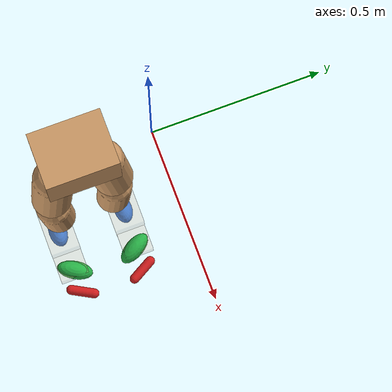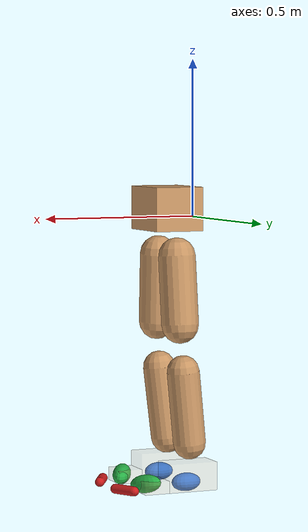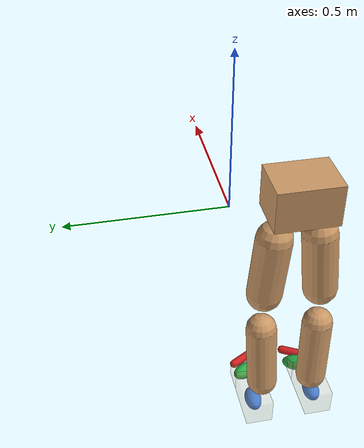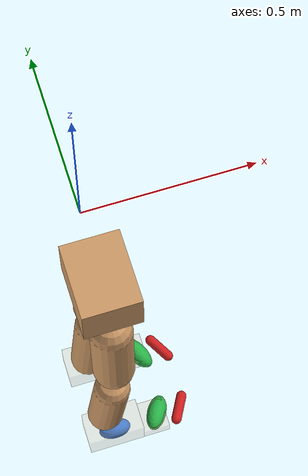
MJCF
<mujoco model="smpl_lower_humanoid_elipsoid_foot_contact">
  <compiler angle="radian" coordinate="local" />
  <option timestep="0.001" integrator="implicitfast" solver="Newton" cone="elliptic" impratio="10" iterations="80" tolerance="1e-10" noslip_iterations="2">
    <flag nativeccd="enable" multiccd="enable" />
  </option>
  <default>
    <joint damping="0.12" armature="0.0005" />
    <geom solref="0.012 1" solimp="0.90 0.98 0.0015 0.5 2" margin="0.0005" />
    <default class="elipsoid_foot_contact">
      <geom type="ellipsoid" density="0" condim="6" contype="1" conaffinity="2" friction="1.0 0.03 0.002" rgba="0.10 0.45 0.85 0.88" />
    </default>
    <default class="elipsoid_touch_site">
      <site type="box" group="3" rgba="0.9 0.2 0.1 0.18" />
    </default>
  </default>
  <asset>
    <texture type="skybox" builtin="gradient" rgb1=".4 .5 .6" rgb2="0 0 0" width="100" height="100" />
    <texture builtin="flat" height="1278" mark="cross" markrgb="1 1 1" name="texgeom" random="0.01" rgb1="0.8 0.6 0.4" rgb2="0.8 0.6 0.4" type="cube" width="127" />
    <texture builtin="checker" height="100" name="texplane" rgb1="0 0 0" rgb2="0.8 0.8 0.8" type="2d" width="100" />
    <material name="MatPlane" reflectance="0.5" shininess="1" specular="1" texrepeat="60 60" texture="texplane" />
    <material name="geom" texture="texgeom" texuniform="true" />
  </asset>
  <worldbody>
    <light cutoff="100" diffuse="1 1 1" dir="-0 0 -1.3" directional="true" exponent="1" pos="0 0 1.3" specular=".1 .1 .1" />
    <body name="Pelvis" pos="-0.0018 -0.2233 0.0282">
      <geom type="box" pos="-0.0055 -0.0000 -0.0121" size="0.083 0.1069 0.0722" quat="1.0000 0.0000 0.0000 0.0000" density="1000" conaffinity="1" condim="3" contype="7" margin="0.001" rgba="0.8 0.6 .4 1" />
      <body name="L_Hip" pos="-0.0068 0.0695 -0.0914">
        <joint name="L_Hip_x" type="hinge" pos="0 0 0" axis="1 0 0" stiffness="800" damping="80" armature="0.02" range="-180.0000 180.0000" limited="true" />
        <joint name="L_Hip_y" type="hinge" pos="0 0 0" axis="0 1 0" stiffness="800" damping="80" armature="0.02" range="-180.0000 180.0000" limited="true" />
        <joint name="L_Hip_z" type="hinge" pos="0 0 0" axis="0 0 1" stiffness="800" damping="80" armature="0.02" range="-180.0000 180.0000" limited="true" />
        <geom type="capsule" contype="1" conaffinity="1" density="2040.816327" fromto="-0.0009 0.0069 -0.0750 -0.0036 0.0274 -0.3002" size="0.0615" condim="3" margin="0.001" rgba="0.8 0.6 .4 1" />
        <body name="L_Knee" pos="-0.0045 0.0343 -0.3752">
          <joint name="L_Knee_x" type="hinge" pos="0 0 0" axis="1 0 0" stiffness="800" damping="80" armature="0.02" range="-180.0000 180.0000" limited="true" />
          <joint name="L_Knee_y" type="hinge" pos="0 0 0" axis="0 1 0" stiffness="800" damping="80" armature="0.02" range="-180.0000 180.0000" limited="true" />
          <joint name="L_Knee_z" type="hinge" pos="0 0 0" axis="0 0 1" stiffness="800" damping="80" armature="0.02" range="-180.0000 180.0000" limited="true" />
          <geom type="capsule" contype="1" conaffinity="1" density="1234.567901" fromto="-0.0087 -0.0027 -0.0796 -0.0350 -0.0109 -0.3184" size="0.0541" condim="3" margin="0.001" rgba="0.8 0.6 .4 1" />
          <body name="L_Ankle" pos="-0.0437 -0.0136 -0.398">
            <joint name="L_Ankle_x" type="hinge" pos="0 0 0" axis="1 0 0" stiffness="800" damping="80" armature="0.02" range="-180.0000 180.0000" limited="true" />
            <joint name="L_Ankle_y" type="hinge" pos="0 0 0" axis="0 1 0" stiffness="800" damping="80" armature="0.02" range="-180.0000 180.0000" limited="true" />
            <joint name="L_Ankle_z" type="hinge" pos="0 0 0" axis="0 0 1" stiffness="800" damping="80" armature="0.02" range="-180.0000 180.0000" limited="true" />
            <geom name="L_foot_inertial_visual" type="box" pos="0.0242 0.0233 -0.0239" size="0.085 0.0483 0.0464" quat="1.0000 0.0000 0.0000 0.0000" density="1000" conaffinity="0" condim="3" contype="0" margin="0.001" rgba="0.8 0.6 .4 0.18" />
            <body name="L_elipsoid_foot_segment" pos="0.00000 0.02400 -0.03000">
              <inertial pos="0.00000 -0.01000 0.02800" mass="0.55" diaginertia="0.0012 0.0026 0.0021" />
              <geom name="L_heel_ellipsoid" class="elipsoid_foot_contact" pos="0.03000 0.00000 -0.01500" quat="0.70512 0.05298 0.05298 -0.70512" size="0.030 0.050 0.030" rgba="0.18 0.48 0.90 0.90" />
              <geom name="L_ball_ellipsoid" class="elipsoid_foot_contact" pos="0.17000 -0.01000 -0.01366" quat="0.85577 0.08586 0.05093 -0.50763" size="0.060 0.030 0.030" rgba="0.16 0.70 0.28 0.90" />
              <site name="L_heel_touch" class="elipsoid_touch_site" pos="0.03000 0.00000 -0.03100" size="0.050 0.070 0.004" />
              <site name="L_ball_touch" class="elipsoid_touch_site" pos="0.17000 -0.01000 -0.03100" size="0.080 0.055 0.004" />
              <body name="L_elipsoid_toe_segment" pos="0.20000 0.00000 -0.01400">
                <joint name="L_toe_hinge" type="hinge" axis="0 -1 0" range="-0.8 0.7" limited="true" damping="0.18" armature="0.0004" />
                <inertial pos="0.05000 0.00000 0.00200" mass="0.12" diaginertia="0.00018 0.00045 0.00038" />
                <geom name="L_toe_capsule" class="elipsoid_foot_contact" type="capsule" fromto="0.02500 0.02400 -0.01500  0.06300 -0.04400 -0.01500" size="0.016" rgba="0.82 0.12 0.12 0.90" />
                <site name="L_toe_touch" class="elipsoid_touch_site" pos="0.04400 -0.01000 -0.03100" size="0.040 0.060 0.004" />
              </body>
            </body>
            <body name="L_Toe" pos="0.1193 0.0264 -0.0558">
              <joint name="L_Toe_x" type="hinge" pos="0 0 0" axis="1 0 0" stiffness="500" damping="50" armature="0.02" range="-180.0000 180.0000" limited="true" />
              <joint name="L_Toe_y" type="hinge" pos="0 0 0" axis="0 1 0" stiffness="500" damping="50" armature="0.02" range="-180.0000 180.0000" limited="true" />
              <joint name="L_Toe_z" type="hinge" pos="0 0 0" axis="0 0 1" stiffness="500" damping="50" armature="0.02" range="-180.0000 180.0000" limited="true" />
              <geom name="L_toe_inertial_visual" type="box" pos="0.0248 -0.0030 0.0055" size="0.0496 0.0478 0.02" quat="1.0000 0.0000 0.0000 0.0000" density="1000" conaffinity="0" condim="3" contype="0" margin="0.001" rgba="0.8 0.6 .4 0.12" />
            </body>
          </body>
        </body>
      </body>
      <body name="R_Hip" pos="-0.0043 -0.0677 -0.0905">
        <joint name="R_Hip_x" type="hinge" pos="0 0 0" axis="1 0 0" stiffness="800" damping="80" armature="0.02" range="-180.0000 180.0000" limited="true" />
        <joint name="R_Hip_y" type="hinge" pos="0 0 0" axis="0 1 0" stiffness="800" damping="80" armature="0.02" range="-180.0000 180.0000" limited="true" />
        <joint name="R_Hip_z" type="hinge" pos="0 0 0" axis="0 0 1" stiffness="800" damping="80" armature="0.02" range="-180.0000 180.0000" limited="true" />
        <geom type="capsule" contype="1" conaffinity="1" density="2040.816327" fromto="-0.0018 -0.0077 -0.0765 -0.0071 -0.0306 -0.3061" size="0.0606" condim="3" margin="0.001" rgba="0.8 0.6 .4 1" />
        <body name="R_Knee" pos="-0.0089 -0.0383 -0.3826">
          <joint name="R_Knee_x" type="hinge" pos="0 0 0" axis="1 0 0" stiffness="800" damping="80" armature="0.02" range="-180.0000 180.0000" limited="true" />
          <joint name="R_Knee_y" type="hinge" pos="0 0 0" axis="0 1 0" stiffness="800" damping="80" armature="0.02" range="-180.0000 180.0000" limited="true" />
          <joint name="R_Knee_z" type="hinge" pos="0 0 0" axis="0 0 1" stiffness="800" damping="80" armature="0.02" range="-180.0000 180.0000" limited="true" />
          <geom type="capsule" contype="1" conaffinity="1" density="1234.567901" fromto="-0.0085 0.0032 -0.0797 -0.0338 0.0126 -0.3187" size="0.0541" condim="3" margin="0.001" rgba="0.8 0.6 .4 1" />
          <body name="R_Ankle" pos="-0.0423 0.0158 -0.3984">
            <joint name="R_Ankle_x" type="hinge" pos="0 0 0" axis="1 0 0" stiffness="800" damping="80" armature="0.02" range="-180.0000 180.0000" limited="true" />
            <joint name="R_Ankle_y" type="hinge" pos="0 0 0" axis="0 1 0" stiffness="800" damping="80" armature="0.02" range="-180.0000 180.0000" limited="true" />
            <joint name="R_Ankle_z" type="hinge" pos="0 0 0" axis="0 0 1" stiffness="800" damping="80" armature="0.02" range="-180.0000 180.0000" limited="true" />
            <geom name="R_foot_inertial_visual" type="box" pos="0.0256 -0.0212 -0.0174" size="0.0865 0.0483 0.0478" quat="1.0000 0.0000 0.0000 0.0000" density="1000" conaffinity="0" condim="3" contype="0" margin="0.001" rgba="0.8 0.6 .4 0.18" />
            <body name="R_elipsoid_foot_segment" pos="0.00000 -0.02400 -0.02500">
              <inertial pos="0.00000 0.01000 0.02800" mass="0.55" diaginertia="0.0012 0.0026 0.0021" />
              <geom name="R_heel_ellipsoid" class="elipsoid_foot_contact" pos="0.03000 0.00000 -0.01500" quat="0.70512 -0.05298 0.05298 0.70512" size="0.030 0.050 0.030" rgba="0.18 0.48 0.90 0.90" />
              <geom name="R_ball_ellipsoid" class="elipsoid_foot_contact" pos="0.17000 0.01000 -0.01366" quat="0.85577 -0.08586 0.05093 0.50763" size="0.060 0.030 0.030" rgba="0.16 0.70 0.28 0.90" />
              <site name="R_heel_touch" class="elipsoid_touch_site" pos="0.03000 0.00000 -0.03100" size="0.050 0.070 0.004" />
              <site name="R_ball_touch" class="elipsoid_touch_site" pos="0.17000 0.01000 -0.03100" size="0.080 0.055 0.004" />
              <body name="R_elipsoid_toe_segment" pos="0.20000 0.00000 -0.01400">
                <joint name="R_toe_hinge" type="hinge" axis="0 1 0" range="-0.8 0.7" limited="true" damping="0.18" armature="0.0004" />
                <inertial pos="0.05000 0.00000 0.00200" mass="0.12" diaginertia="0.00018 0.00045 0.00038" />
                <geom name="R_toe_capsule" class="elipsoid_foot_contact" type="capsule" fromto="0.02500 -0.02400 -0.01500  0.06300 0.04400 -0.01500" size="0.016" rgba="0.82 0.12 0.12 0.90" />
                <site name="R_toe_touch" class="elipsoid_touch_site" pos="0.04400 0.01000 -0.03100" size="0.040 0.060 0.004" />
              </body>
            </body>
            <body name="R_Toe" pos="0.1233 -0.0254 -0.0481">
              <joint name="R_Toe_x" type="hinge" pos="0 0 0" axis="1 0 0" stiffness="500" damping="50" armature="0.02" range="-180.0000 180.0000" limited="true" />
              <joint name="R_Toe_y" type="hinge" pos="0 0 0" axis="0 1 0" stiffness="500" damping="50" armature="0.02" range="-180.0000 180.0000" limited="true" />
              <joint name="R_Toe_z" type="hinge" pos="0 0 0" axis="0 0 1" stiffness="500" damping="50" armature="0.02" range="-180.0000 180.0000" limited="true" />
              <geom name="R_toe_inertial_visual" type="box" pos="0.0227 0.0042 0.0045" size="0.0493 0.0479 0.0216" quat="1.0000 0.0000 0.0000 0.0000" density="1000" conaffinity="0" condim="3" contype="0" margin="0.001" rgba="0.8 0.6 .4 0.12" />
            </body>
          </body>
        </body>
      </body>
      <joint type="free" name="Pelvis" limited="false" actuatorfrclimited="false" />
    </body>
  </worldbody>
  <actuator>
    <motor name="L_Hip_x" joint="L_Hip_x" gear="500" />
    <motor name="L_Hip_y" joint="L_Hip_y" gear="500" />
    <motor name="L_Hip_z" joint="L_Hip_z" gear="500" />
    <motor name="L_Knee_x" joint="L_Knee_x" gear="500" />
    <motor name="L_Knee_y" joint="L_Knee_y" gear="500" />
    <motor name="L_Knee_z" joint="L_Knee_z" gear="500" />
    <motor name="L_Ankle_x" joint="L_Ankle_x" gear="500" />
    <motor name="L_Ankle_y" joint="L_Ankle_y" gear="500" />
    <motor name="L_Ankle_z" joint="L_Ankle_z" gear="500" />
    <motor name="L_Toe_x" joint="L_Toe_x" gear="500" />
    <motor name="L_Toe_y" joint="L_Toe_y" gear="500" />
    <motor name="L_Toe_z" joint="L_Toe_z" gear="500" />
    <motor name="R_Hip_x" joint="R_Hip_x" gear="500" />
    <motor name="R_Hip_y" joint="R_Hip_y" gear="500" />
    <motor name="R_Hip_z" joint="R_Hip_z" gear="500" />
    <motor name="R_Knee_x" joint="R_Knee_x" gear="500" />
    <motor name="R_Knee_y" joint="R_Knee_y" gear="500" />
    <motor name="R_Knee_z" joint="R_Knee_z" gear="500" />
    <motor name="R_Ankle_x" joint="R_Ankle_x" gear="500" />
    <motor name="R_Ankle_y" joint="R_Ankle_y" gear="500" />
    <motor name="R_Ankle_z" joint="R_Ankle_z" gear="500" />
    <motor name="R_Toe_x" joint="R_Toe_x" gear="500" />
    <motor name="R_Toe_y" joint="R_Toe_y" gear="500" />
    <motor name="R_Toe_z" joint="R_Toe_z" gear="500" />
  </actuator>
  <contact>
    <exclude body1="R_Knee" body2="R_Toe" />
    <exclude body1="R_Knee" body2="L_Ankle" />
    <exclude body1="R_Knee" body2="L_Toe" />
    <exclude body1="L_Knee" body2="L_Toe" />
    <exclude body1="L_Knee" body2="R_Ankle" />
    <exclude body1="L_Knee" body2="R_Toe" />
  </contact>
  <sensor>
    <touch name="L_heel_force" site="L_heel_touch" />
    <touch name="L_ball_force" site="L_ball_touch" />
    <touch name="L_toe_force" site="L_toe_touch" />
    <touch name="R_heel_force" site="R_heel_touch" />
    <touch name="R_ball_force" site="R_ball_touch" />
    <touch name="R_toe_force" site="R_toe_touch" />
  </sensor>
  <size njmax="700" nconmax="700" />
</mujoco>
